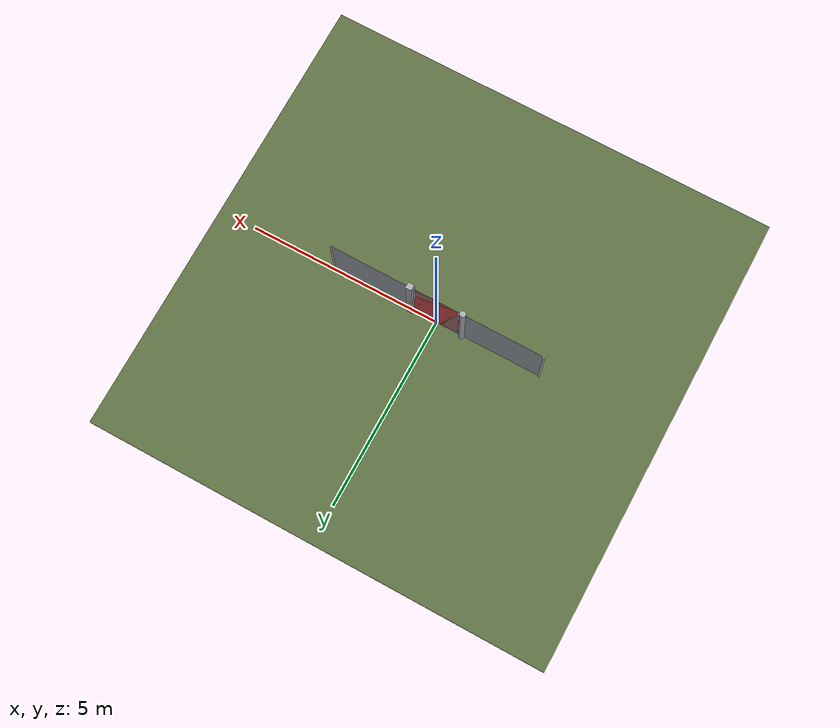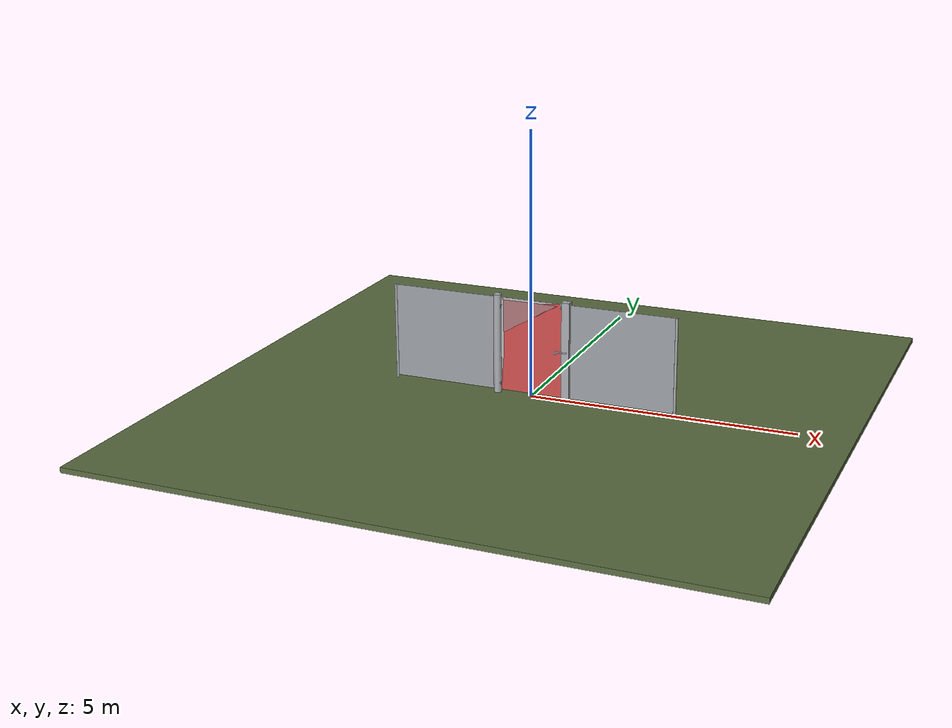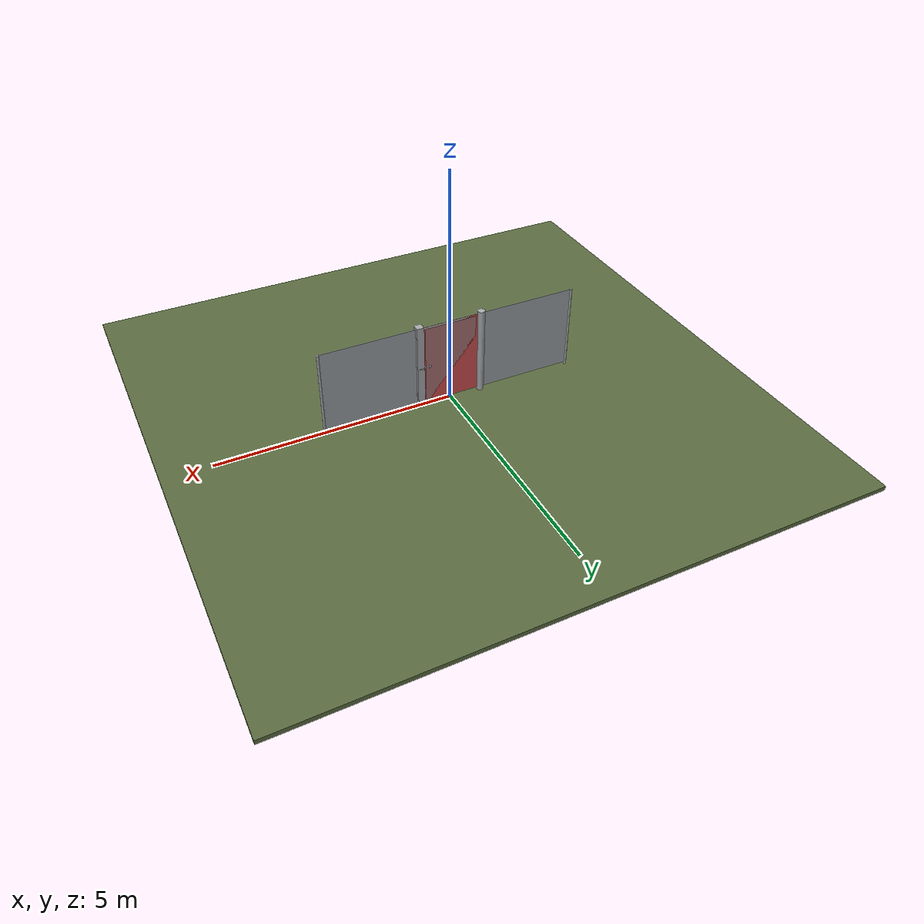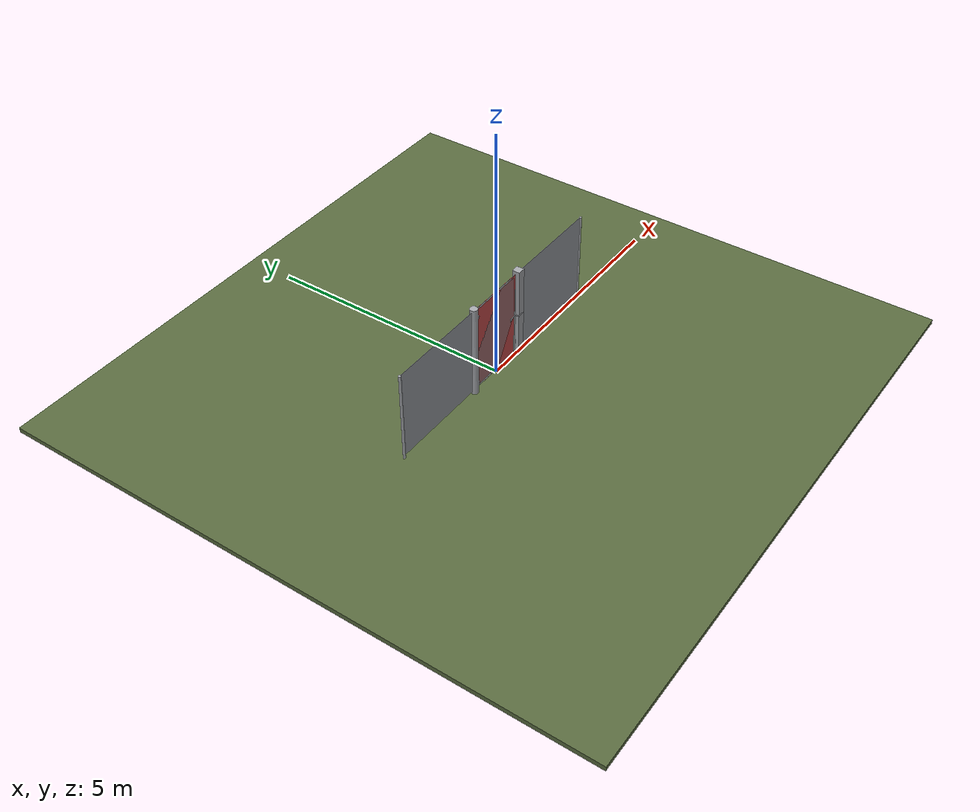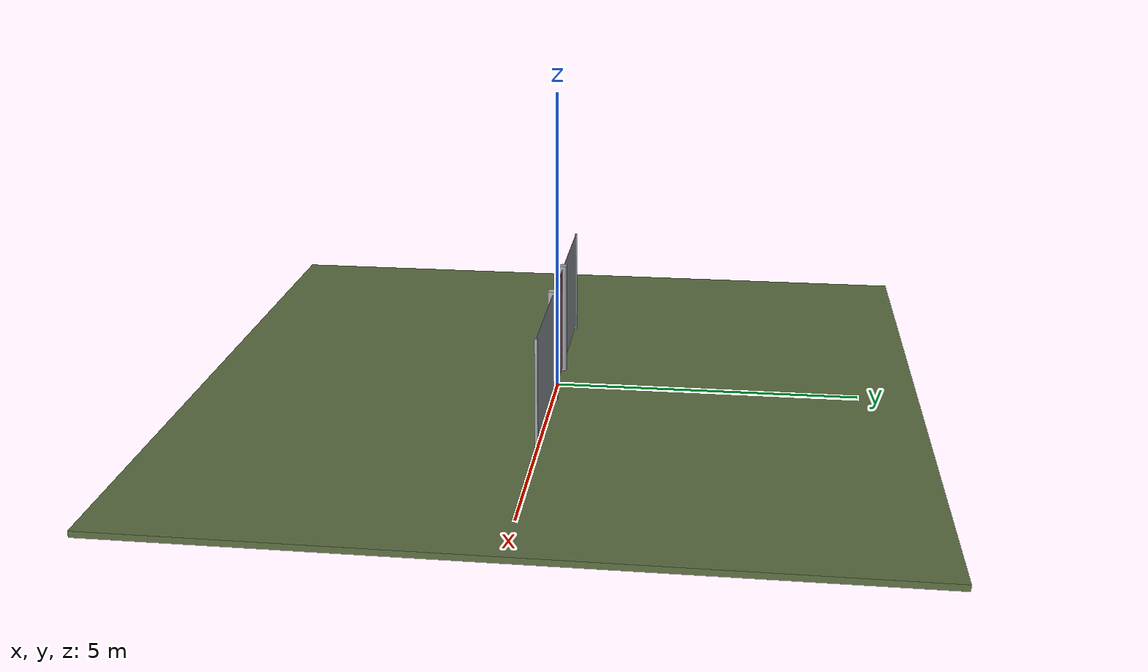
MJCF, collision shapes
<?xml version="1.0" ?>
<mujoco model="db0200_gate_swing_simple">
  <compiler angle="radian" meshdir="../../hardware" texturedir="../../textures" autolimits="true" inertiafromgeom="false"/>
  <option timestep="0.002" integrator="implicitfast" cone="elliptic" impratio="10" noslip_iterations="3">
    <flag multiccd="enable"/>
  </option>
  <size memory="16M"/>
  <default>
    <geom condim="4" solref="0.005 1" solimp="0.95 0.99 0.001"/>
    <joint solreflimit="0.005 1" solimplimit="0.95 0.99 0.001"/>
    <tendon solreflimit="0.005 1"/>
    <equality solref="0.002 1"/>
  </default>
  <visual>
    <headlight ambient="0.4 0.4 0.4" diffuse="0.7 0.7 0.7" specular="0.2 0.2 0.2"/>
    <quality shadowsize="4096"/>
    <map znear="0.01" zfar="60"/>
  </visual>
  <asset>
    <mesh name="strap_hinge_3c1a7c1a5f" file="strap_hinge_3c1a7c1a5f.obj"/>
    <material name="mat_floor" rgba="0.35 0.42 0.25 1" specular="0.2" shininess="0.15" reflectance="0"/>
    <material name="mat_wall" rgba="0.78 0.76 0.7 1" specular="0.2" shininess="0.1" reflectance="0"/>
    <material name="mat_leaf" rgba="0.7 0.71 0.72 1" specular="0.74" shininess="0.5" reflectance="0.36"/>
    <material name="mat_mesh_infill" rgba="0.6 0.62 0.64 0.55" specular="0.68" shininess="0.3" reflectance="0.1"/>
    <material name="mat_hinge" rgba="0.65 0.66 0.68 1" specular="0.74" shininess="0.5" reflectance="0.36"/>
    <material name="mat_op_steel_galvanized" rgba="0.65 0.66 0.68 1" specular="0.74" shininess="0.5" reflectance="0.36"/>
    <material name="mat_frame" rgba="0.65 0.66 0.68 1" specular="0.74" shininess="0.5" reflectance="0.36"/>
    <material name="mat_fence_mesh" rgba="0.6 0.62 0.64 0.5" specular="0.68" shininess="0.3" reflectance="0.1"/>
    <texture name="skybox" type="skybox" builtin="gradient" rgb1="0.6 0.7 0.85" rgb2="0.9 0.92 0.95" width="256" height="256"/>
  </asset>
  <worldbody>
    <light name="sun" pos="1.5 -2.5 4" dir="-0.3 0.5 -0.8" directional="true" diffuse="0.8 0.8 0.8" specular="0.3 0.3 0.3" castshadow="true"/>
    <light name="fill" pos="-1.5 2.5 3" dir="0.3 -0.5 -0.7" directional="true" diffuse="0.35 0.35 0.4" castshadow="false"/>
    <camera name="robot_view" pos="0 -2.33125 1.56275" xyaxes="1 0 0 0 0.26963 0.962964" fovy="52"/>
    <camera name="far_view" pos="0 2.33125 1.56275" xyaxes="-1 0 0 0 -0.26963 0.962964" fovy="52"/>
    <camera name="iso" pos="1.77175 -1.95825 1.93575" xyaxes="0.741536 0.670913 0 -0.242917 0.268487 0.932151" fovy="46"/>
    <camera name="detail_handle" pos="0.766 -0.8135 1.285" xyaxes="0.97561 0.219512 0 -0.070934 0.315262 0.94635" fovy="38"/>
    <geom name="floor" type="box" size="6 6 0.05" pos="0 0 -0.05" material="mat_floor" group="0" contype="1" conaffinity="1" friction="0.8 0.005 0.0001" density="2400"/>
    <geom name="hinge_pintle_0" type="cylinder" size="0.008 0.02" pos="-0.603 -0.05 0.174" material="mat_hinge" group="1" contype="0" conaffinity="0" density="7850"/>
    <geom name="hinge_pintle_1" type="cylinder" size="0.008 0.02" pos="-0.603 -0.05 1.674" material="mat_hinge" group="1" contype="0" conaffinity="0" density="7850"/>
    <geom name="post_hinge" type="cylinder" size="0.075 0.95" pos="-0.681 0 0.95" material="mat_frame" group="0" contype="1" conaffinity="1" friction="0.6 0.005 0.0001" density="800"/>
    <geom name="post_latch" type="box" size="0.075 0.075 0.95" pos="0.681 0 0.95" material="mat_frame" group="0" contype="1" conaffinity="1" friction="0.6 0.005 0.0001" density="800"/>
    <geom name="gate_stop" type="box" size="0.02 0.012 0.06" pos="0.586 0.0135 0.3" material="mat_frame" group="0" contype="1" conaffinity="1" friction="0.6 0.005 0.0001" density="800"/>
    <geom name="fence_l" type="box" size="1 0.002 0.9" pos="-1.756 0 0.95" material="mat_fence_mesh" group="0" contype="1" conaffinity="1" friction="0.6 0.005 0.0001" density="100"/>
    <geom name="fence_post_l" type="cylinder" size="0.025 0.925" pos="-2.756 0 0.925" material="mat_frame" group="0" contype="1" conaffinity="1" friction="0.6 0.005 0.0001" density="7850"/>
    <geom name="fence_r" type="box" size="1 0.002 0.9" pos="1.756 0 0.95" material="mat_fence_mesh" group="0" contype="1" conaffinity="1" friction="0.6 0.005 0.0001" density="100"/>
    <geom name="fence_post_r" type="cylinder" size="0.025 0.925" pos="2.756 0 0.925" material="mat_frame" group="0" contype="1" conaffinity="1" friction="0.6 0.005 0.0001" density="7850"/>
    <geom name="gate_stop_strap_0" type="box" size="0.0755 0.01255 0.048" pos="0.681 0.01055 0.3" material="mat_frame" group="1" contype="0" conaffinity="0" density="7850"/>
    <site name="approach_point" pos="0 -1.5 0" quat="1 0 0 0" size="0.05" rgba="0.2 0.9 0.2 0.5" group="4"/>
    <site name="goal_point" pos="0 1.5 0" quat="1 0 0 0" size="0.05" rgba="0.2 0.9 0.2 0.5" group="4"/>
    <site name="door_plane_center" pos="0 0 0.91" quat="1 0 0 0" size="0.02" rgba="0.2 0.9 0.2 0.5" group="4"/>
    <body name="leaf" pos="-0.606 0 0">
      <inertial pos="0.507237 -0.00271 0.948842" mass="6.369037" quat="0.496819 0.50126 -0.498733 0.503165" diaginertia="0.959475269 2.032877895 2.991335695"/>
      <joint name="leaf_hinge" type="hinge" axis="0 0 -1" pos="0.003 -0.05 0" limited="true" range="0 1.745329" damping="0.724086" frictionloss="2.801844" armature="0.02"/>
      <geom name="leaf_slab_col" type="box" size="0.6 0.0015 0.9" pos="0.603 0 0.95" material="mat_leaf" group="3" contype="1" conaffinity="1" rgba="0.8 0.3 0.3 0.25" friction="0.45 0.005 0.0001" density="1"/>
      <geom name="leaf_rail_b" type="box" size="0.6 0.0015 0.0225" pos="0.603 0 0.0725" material="mat_leaf" group="1" contype="0" conaffinity="0" density="1"/>
      <geom name="leaf_rail_t" type="box" size="0.6 0.0015 0.0225" pos="0.603 0 1.8275" material="mat_leaf" group="1" contype="0" conaffinity="0" density="1"/>
      <geom name="leaf_stile_h" type="box" size="0.0225 0.0015 0.9" pos="0.0255 0 0.95" material="mat_leaf" group="1" contype="0" conaffinity="0" density="1"/>
      <geom name="leaf_stile_l" type="box" size="0.0225 0.0015 0.9" pos="1.1805 0 0.95" material="mat_leaf" group="1" contype="0" conaffinity="0" density="1"/>
      <geom name="leaf_mesh" type="box" size="0.555 0.0015 0.855" pos="0.603 0 0.95" material="mat_mesh_infill" group="1" contype="0" conaffinity="0" density="1"/>
      <geom name="hinge_strap_0" type="mesh" mesh="strap_hinge_3c1a7c1a5f" pos="0.003 -0.0045 0.2" material="mat_hinge" group="1" contype="0" conaffinity="0" density="7850"/>
      <geom name="hinge_strap_eye_0" type="cylinder" size="0.011 0.012" pos="0.003 -0.05 0.2" material="mat_hinge" group="1" contype="0" conaffinity="0" density="7850"/>
      <geom name="hinge_strap_neck_0" type="box" size="0.012 0.02675 0.006" pos="0.003 -0.02725 0.2" material="mat_hinge" group="1" contype="0" conaffinity="0" density="7850"/>
      <geom name="hinge_strap_1" type="mesh" mesh="strap_hinge_3c1a7c1a5f" pos="0.003 -0.0045 1.7" material="mat_hinge" group="1" contype="0" conaffinity="0" density="7850"/>
      <geom name="hinge_strap_eye_1" type="cylinder" size="0.011 0.012" pos="0.003 -0.05 1.7" material="mat_hinge" group="1" contype="0" conaffinity="0" density="7850"/>
      <geom name="hinge_strap_neck_1" type="box" size="0.012 0.02675 0.006" pos="0.003 -0.02725 1.7" material="mat_hinge" group="1" contype="0" conaffinity="0" density="7850"/>
      <geom name="leaf_fork_strap_n" type="box" size="0.02 0.002 0.03" pos="1.063 -0.0035 0.9" material="mat_op_steel_galvanized" group="1" contype="0" conaffinity="0" density="7800"/>
      <geom name="leaf_fork_strap_p" type="box" size="0.02 0.002 0.03" pos="1.063 0.0035 0.9" material="mat_op_steel_galvanized" group="1" contype="0" conaffinity="0" density="7800"/>
      <site name="leaf_edge_mid" pos="1.203 0 0.9" quat="1 0 0 0" size="0.02" rgba="0.2 0.9 0.2 0.5" group="4"/>
      <body name="leaf_fork" pos="1.063 0 0.9">
        <inertial pos="0.126594 -0.004752 0.042319" mass="0.267763" quat="0.985309 -0.014772 -0.110012 0.12979" diaginertia="0.000885078 0.001218971 0.002004596"/>
        <joint name="leaf_fork_hinge" type="hinge" axis="0 -1 0" limited="true" range="0 1.2" damping="0.049205" frictionloss="0.008804" armature="0.0001"/>
        <geom name="leaf_fork_arm" type="box" size="0.069176 0.004 0.012" pos="0.0645 -0.0135 0.025" quat="0.982958 0 -0.183833 0" material="mat_op_steel_galvanized" group="0" contype="1" conaffinity="1" friction="0.6 0.005 0.0001" density="2500"/>
        <geom name="leaf_fork_eye" type="cylinder" size="0.014 0.005" pos="0 -0.0135 0" quat="0.707107 -0.707107 0 0" material="mat_op_steel_galvanized" group="1" contype="0" conaffinity="0" density="2500"/>
        <geom name="leaf_fork_tine_n" type="box" size="0.0625 0.003 0.012" pos="0.1915 -0.084 0.05" material="mat_op_steel_galvanized" group="0" contype="1" conaffinity="1" friction="0.6 0.005 0.0001" density="2500"/>
        <geom name="leaf_fork_tine_p" type="box" size="0.0625 0.003 0.012" pos="0.1915 0.084 0.05" material="mat_op_steel_galvanized" group="0" contype="1" conaffinity="1" friction="0.6 0.005 0.0001" density="2500"/>
        <geom name="leaf_fork_bridge" type="box" size="0.004 0.087 0.012" pos="0.129 0 0.05" material="mat_op_steel_galvanized" group="0" contype="1" conaffinity="1" friction="0.6 0.005 0.0001" density="2500"/>
        <geom name="leaf_fork_handle" type="capsule" size="0.006 0.018" pos="0.129 -0.0135 0.08" material="mat_op_steel_galvanized" group="0" contype="1" conaffinity="1" friction="0.7 0.01 0.0001" density="2500"/>
        <site name="leaf_fork_grip" pos="0.129 -0.0135 0.105" quat="1 0 0 0" size="0.012" rgba="0.2 0.9 0.2 0.5" group="4"/>
      </body>
    </body>
  </worldbody>
  <sensor>
    <jointpos name="leaf_hinge_pos" joint="leaf_hinge"/>
    <jointvel name="leaf_hinge_vel" joint="leaf_hinge"/>
    <jointpos name="leaf_fork_hinge_pos" joint="leaf_fork_hinge"/>
    <jointvel name="leaf_fork_hinge_vel" joint="leaf_fork_hinge"/>
  </sensor>
</mujoco>
